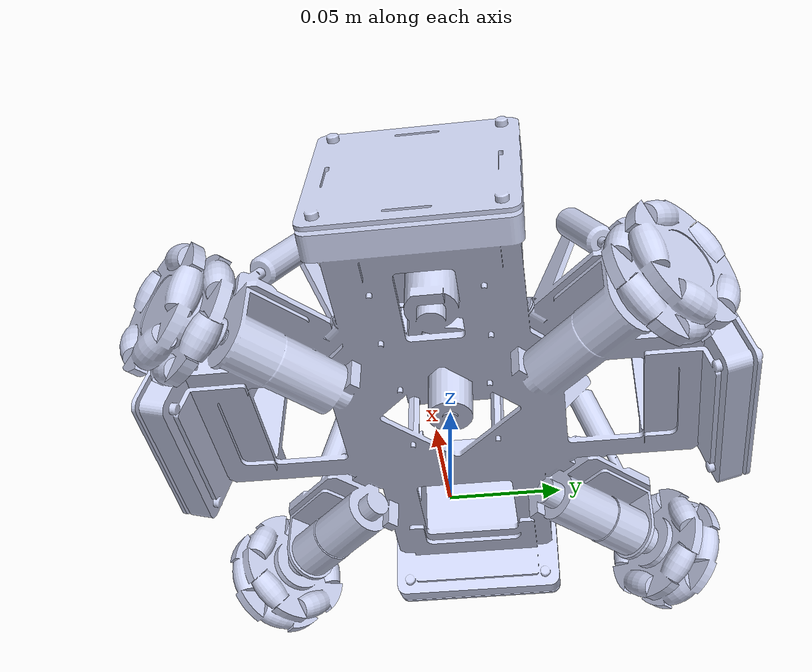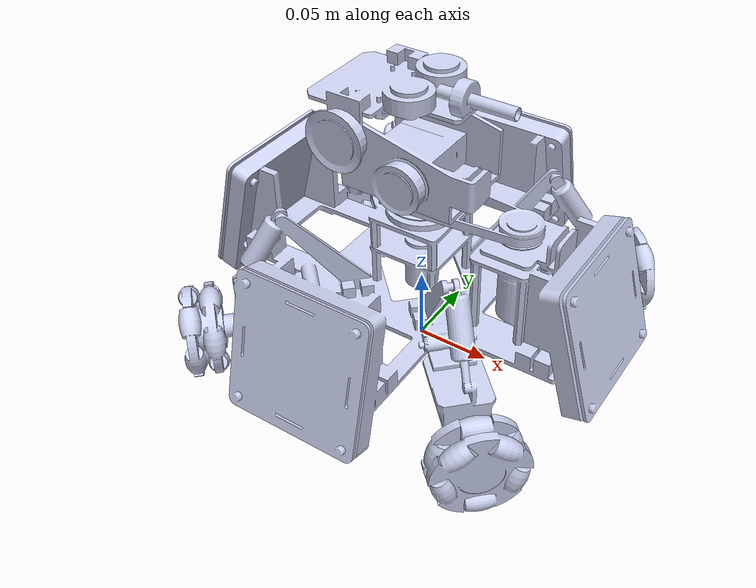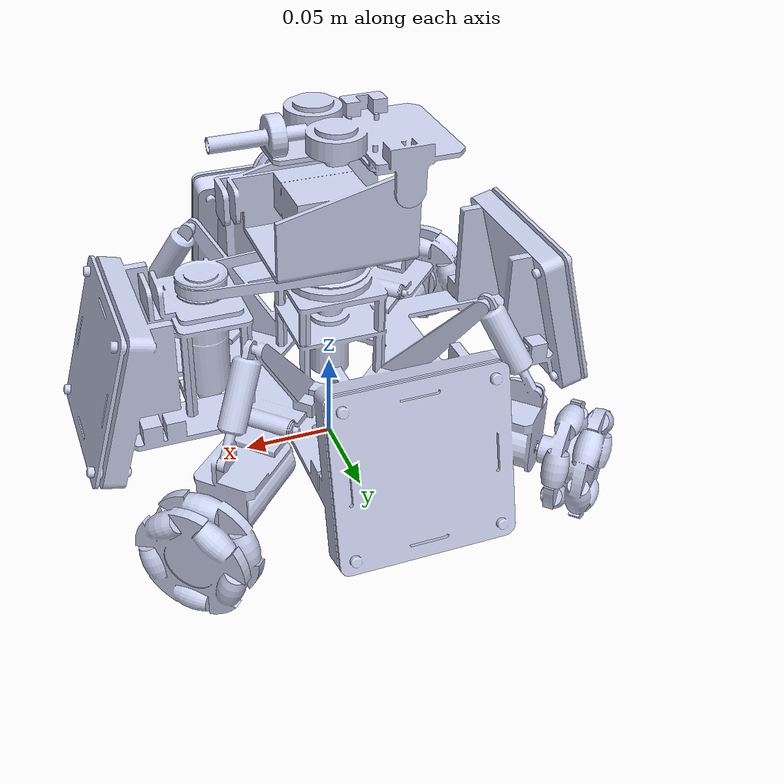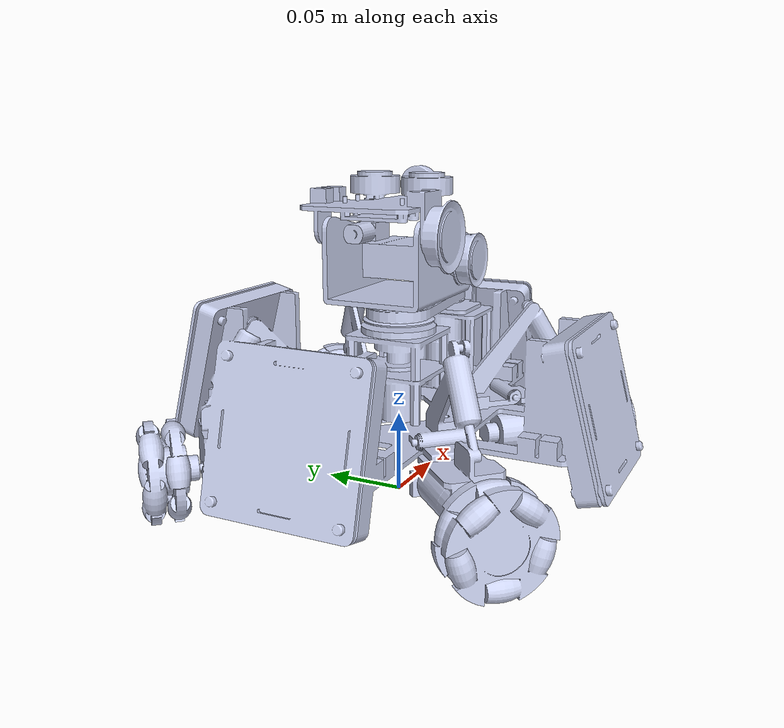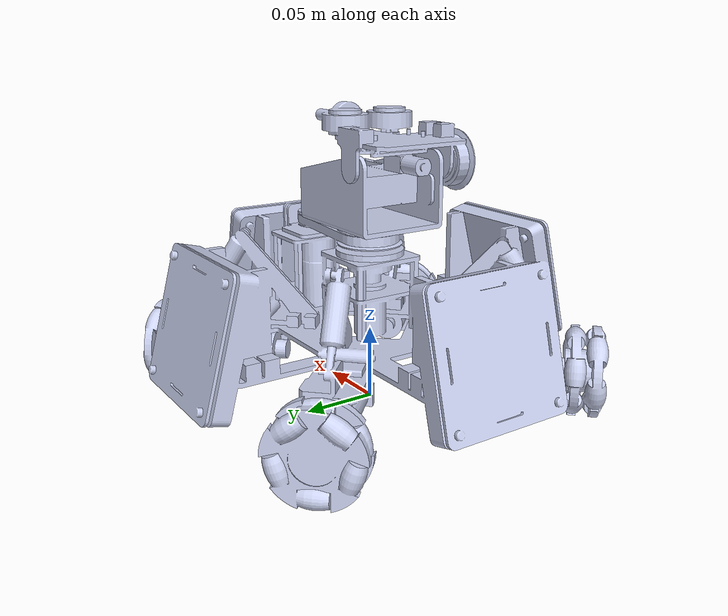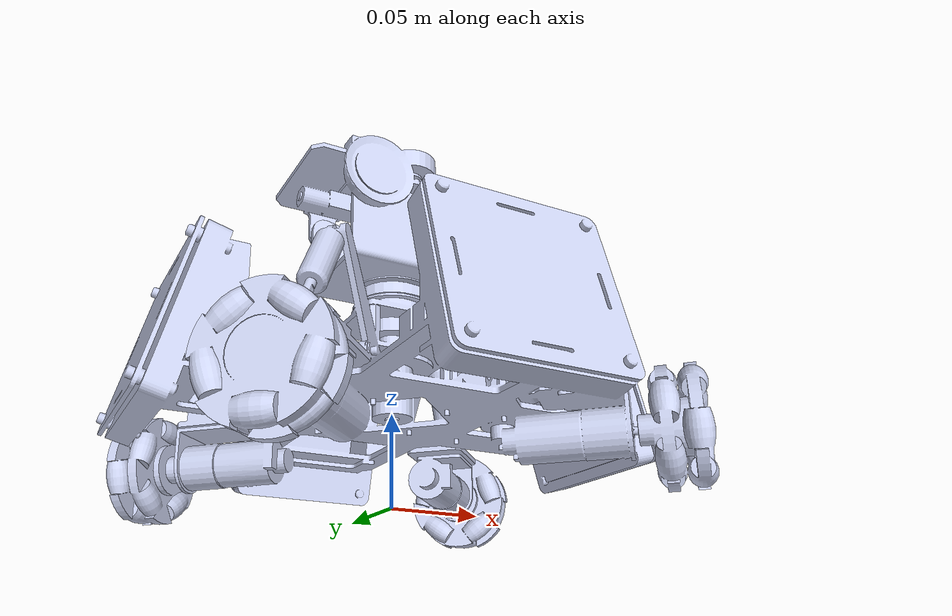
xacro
<?xml version="1.0"?>
<robot name="proto1" xmlns:xacro="http://ros.org/wiki/xacro">
  <xacro:include filename="$(find rabbits_description)/urdf/proto1/mobile_base.xacro" />
  <xacro:include filename="$(find rabbits_description)/urdf/proto1/wheel.xacro" />
  <xacro:include filename="$(find rabbits_description)/urdf/proto1/turret_base.xacro" />
  <xacro:include filename="$(find rabbits_description)/urdf/proto1/turret_unit.xacro" />

  <xacro:mobile_base />

  <xacro:wheel prefix="right" suffix="front" />
  <xacro:wheel prefix="right" suffix="back" />
  <xacro:wheel prefix="left" suffix="front" />
  <xacro:wheel prefix="left" suffix="back" />

  <joint name="right_front_wheel_joint" type="continuous">
    <parent link="base_link" />
    <child link="right_front_wheel" />
    <axis xyz="0 0 1" />
    <origin xyz="0.0880347 -0.0880347 0.03" rpy="${pi/2} 0 ${pi/4}" />
  </joint>
  <joint name="right_back_wheel_joint" type="continuous">
    <parent link="base_link" />
    <child link="right_back_wheel" />
    <axis xyz="0 0 1" />
    <origin xyz="-0.0880347 -0.0880347 0.03" rpy="${pi/2} 0 ${-pi/4}" />
  </joint>
  <joint name="left_front_wheel_joint" type="continuous">
    <parent link="base_link" />
    <child link="left_front_wheel" />
    <axis xyz="0 0 1" />
    <origin xyz="0.0880347 0.0880347 0.03" rpy="${pi/2} 0 ${3*pi/4}" />
  </joint>
  <joint name="left_back_wheel_joint" type="continuous">
    <parent link="base_link" />
    <child link="left_back_wheel" />
    <axis xyz="0 0 1" />
    <origin xyz="-0.0880347 0.0880347 0.03" rpy="${pi/2} 0 ${-3*pi/4}" />
  </joint>

  <xacro:turret_base />
  <joint name="yaw_joint" type="continuous">
    <parent link="base_link" />
    <child link="yaw_link" />
    <axis xyz="0 0 1" />
    <origin xyz="0.0 0.0 0.124" rpy="0 0 0" />
  </joint>

  <xacro:turret_unit />
  <joint name="pitch_joint" type="revolute">
    <parent link="yaw_link" />
    <child link="pitch_link" />
    <axis xyz="0 0 1" />
    <origin xyz="-0.03 -0.0466 0.042" rpy="${pi/2} 0 0" />
    <limit lower="${-pi/12}" upper="${pi/6}" effort="0" velocity="0"/>
  </joint>
</robot>

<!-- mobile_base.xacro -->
<robot xmlns:xacro="http://ros.org/wiki/xacro">
  <xacro:macro name="mobile_base">
    <link name="base_link">
      <visual>
        <origin xyz="0 0 0" rpy="0 0 0" />
        <geometry>
          <mesh filename="package://rabbits_description/meshes/proto1/mobile_base.dae" scale="0.01 0.01 0.01"/>
        </geometry>
      </visual>

      <inertial>
        <mass value="1.0" />
        <inertia ixx="1.0" ixy="0.0" ixz="0.0" iyy="1.0" iyz="0.0" izz="1.0" />
      </inertial>
    </link>
  </xacro:macro>
</robot>

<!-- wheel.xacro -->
<robot xmlns:xacro="http://ros.org/wiki/xacro">
  <xacro:macro name="wheel" params="prefix suffix">
    <link name="${prefix}_${suffix}_wheel">
      <visual>
        <origin xyz="0 0 0" rpy="0 0 0" />
        <geometry>
          <mesh filename="package://rabbits_description/meshes/proto1/wheel.dae" scale="0.01 0.01 0.01" />
        </geometry>
      </visual>

      <inertial>
        <mass value="1.0" />
        <inertia ixx="1.0" ixy="0.0" ixz="0.0" iyy="1.0" iyz="0.0" izz="1.0" />
      </inertial>
    </link>
  </xacro:macro>
</robot>

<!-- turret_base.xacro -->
<robot xmlns:xacro="http://ros.org/wiki/xacro">
  <xacro:macro name="turret_base">
    <link name="yaw_link">
      <visual>
        <origin xyz="0 0 0" rpy="0 0 0" />
        <geometry>
          <mesh filename="package://rabbits_description/meshes/proto1/turret_base.dae" scale="0.01 0.01 0.01"/>
        </geometry>
      </visual>

      <inertial>
        <mass value="1.0" />
        <inertia ixx="1.0" ixy="0.0" ixz="0.0" iyy="1.0" iyz="0.0" izz="1.0" />
      </inertial>
    </link>
  </xacro:macro>
</robot>

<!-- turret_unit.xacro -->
<robot xmlns:xacro="http://ros.org/wiki/xacro">
  <xacro:macro name="turret_unit">
    <link name="pitch_link">
      <visual>
        <origin xyz="0 0 0" rpy="0 0 0" />
        <geometry>
          <mesh filename="package://rabbits_description/meshes/proto1/turret_unit.dae" scale="0.01 0.01 0.01"/>
        </geometry>
      </visual>

      <inertial>
        <mass value="1.0" />
        <inertia ixx="1.0" ixy="0.0" ixz="0.0" iyy="1.0" iyz="0.0" izz="1.0" />
      </inertial>
    </link>
  </xacro:macro>
</robot>
